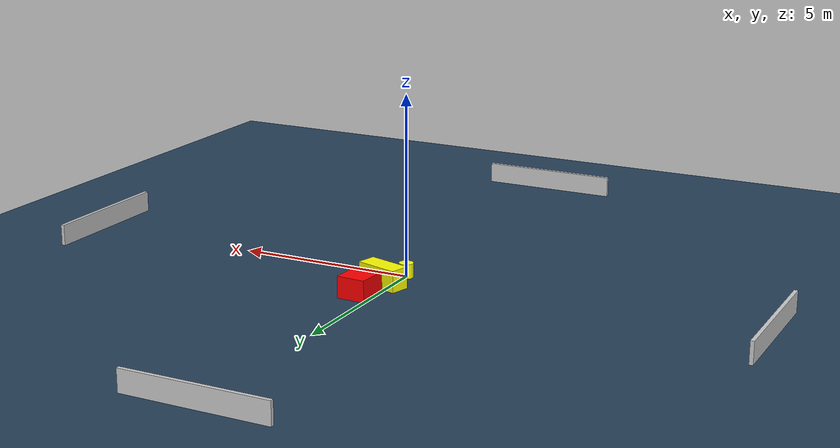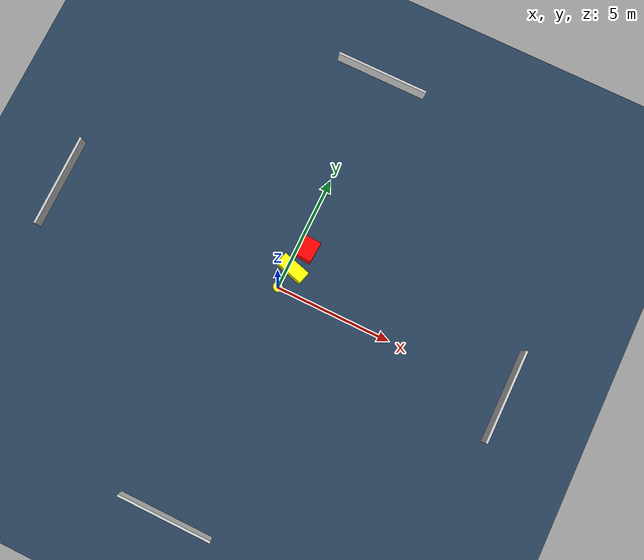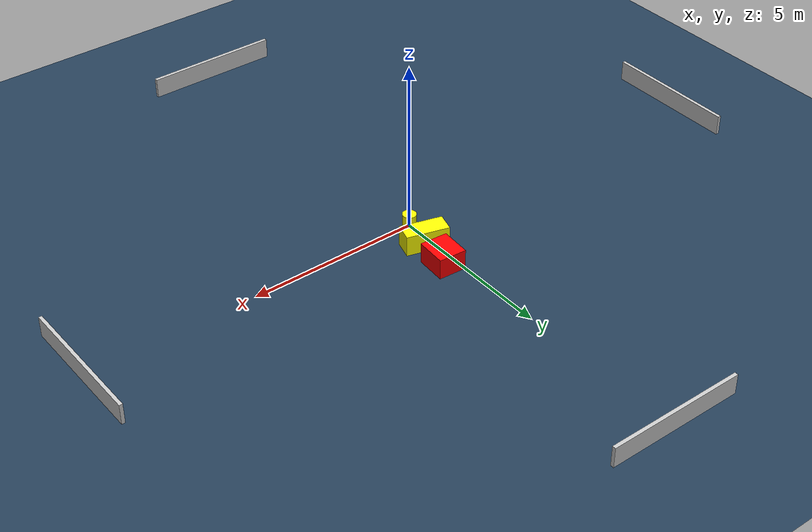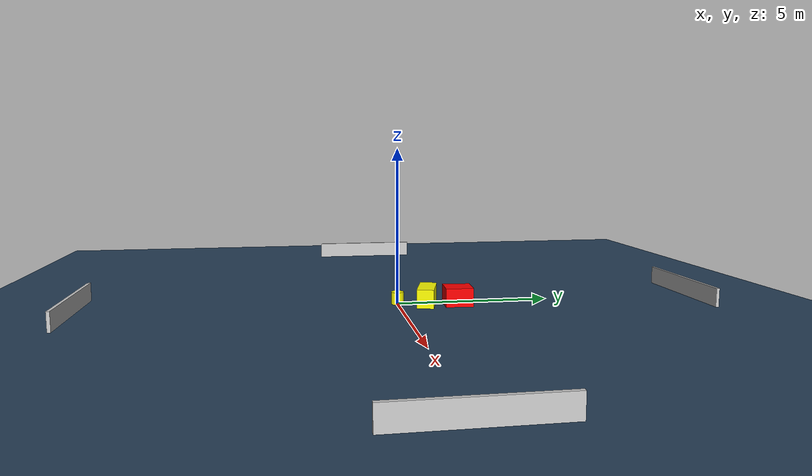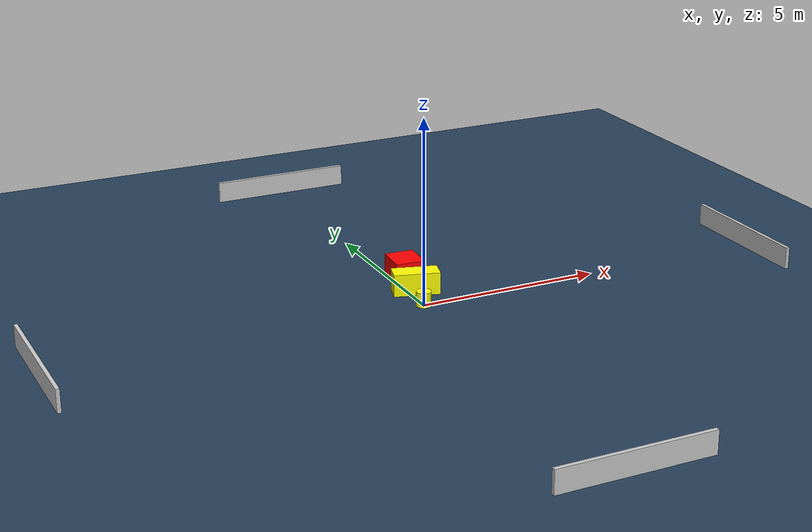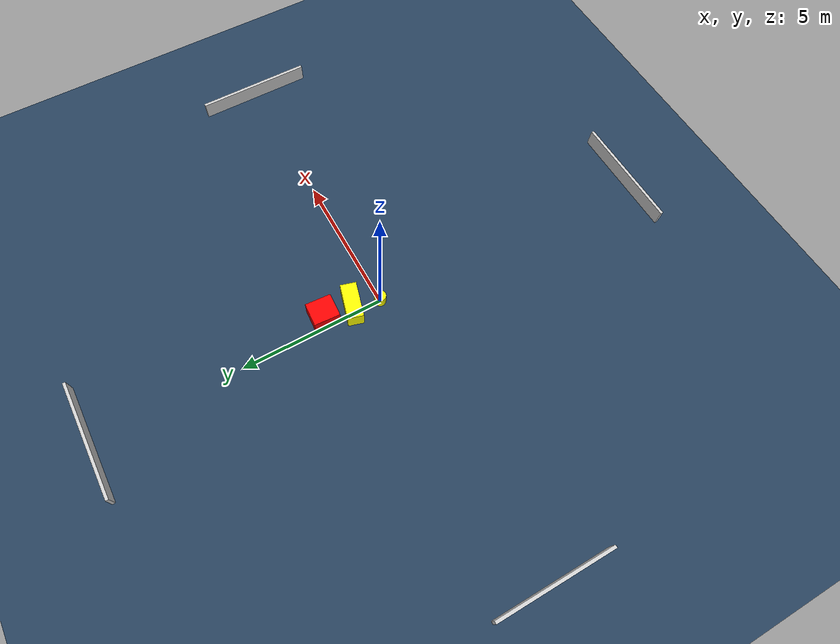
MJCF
<?xml version="1.0" ?>
<mujoco model="generated_environment">
  <option timestep="0.01" integrator="RK4" cone="elliptic"/>
  <default>
    <geom density="1"/>
  </default>
  <asset>
    <texture builtin="gradient" height="3072" name="skybox" rgb1="0.3 0.5 0.7" rgb2="0 0 0" type="skybox" width="512"/>
    <texture builtin="checker" height="300" name="groundplane" rgb1="0.2 0.3 0.4" rgb2="0.1 0.2 0.3" type="2d" width="300"/>
    <material name="groundplane" reflectance="0.2" texrepeat="5 5" texture="groundplane"/>
  </asset>
  <worldbody>
    <light dir="0 0 -1" directional="true" pos="0 0 1.5"/>
    <geom condim="3" friction="0.5 0.005 0.001" material="groundplane" name="floor" pos="0 0 0" size="0 0 0.05" type="plane"/>
    <body name="walls">
      <geom name="wall_1" condim="4" pos="-10.0 0.0 0.3" rgba="0.800000011920929 0.800000011920929 0.800000011920929 1.0" size="0.05 2.0 0.3" type="box"/>
      <geom name="wall_2" condim="4" pos="10.0 0.0 0.3" rgba="0.800000011920929 0.800000011920929 0.800000011920929 1.0" size="0.05 2.0 0.3" type="box"/>
      <geom name="wall_3" condim="4" pos="0.0 -10.0 0.3" rgba="0.800000011920929 0.800000011920929 0.800000011920929 1.0" size="2.0 0.05 0.3" type="box"/>
      <geom name="wall_4" condim="4" pos="0.0 10.0 0.3" rgba="0.800000011920929 0.800000011920929 0.800000011920929 1.0" size="2.0 0.05 0.3" type="box"/>
    </body>
    <body name="robot">
      <joint name="joint_x" type="slide" pos="0 0 0" axis="1 0 0"/>
      <joint name="joint_y" type="slide" pos="0 0 0" axis="0 1 0"/>
      <geom name="robot" type="cylinder" pos="0.0 0.0 0.2" size="0.2 0.2 0.0" mass="5.0" friction="1.0 0.005 0.0001" condim="4" rgba="1.0 1.0 0.0 1.0"/>
    </body>
    <body name="obstacle_1_movable">
      <geom name="obstacle_1_movable" condim="4" pos="0.21572191162996443 0.9307681739908662 0.3" euler="0 0 254.16647278063084" friction="0.0 0.005 0.001" rgba="1.0 1.0 0.0 1.0" size="0.2730131825177662 0.6166155265887987 0.3" type="box" mass="0.1"/>
      <joint type="free"/>
    </body>
    <body name="obstacle_2_static">
      <geom name="obstacle_2_static" condim="4" pos="0.3745837695588305 1.9164967988312027 0.3" euler="0 0 266.2952632982112" friction="0.0 0.005 0.001" rgba="1.0 0.0 0.0 1.0" size="0.4454460980107693 0.4029050047255842 0.3" type="box"/>
    </body>
  </worldbody>
  <actuator>
    <motor name="actuator_x" joint="joint_x" gear="1" ctrlrange="-1 1"/>
    <motor name="actuator_y" joint="joint_y" gear="1" ctrlrange="-1 1"/>
  </actuator>
</mujoco>
